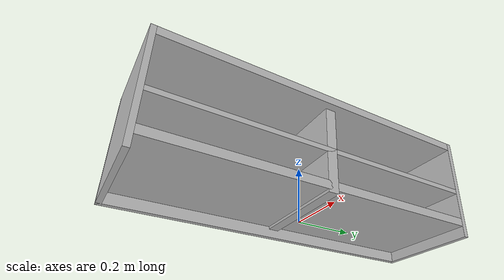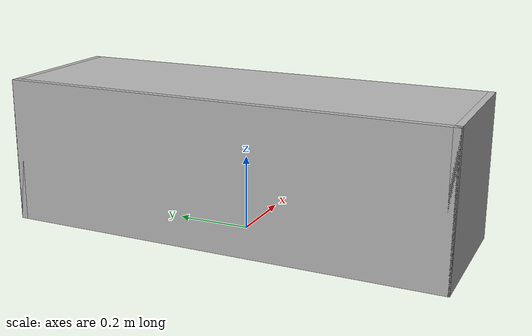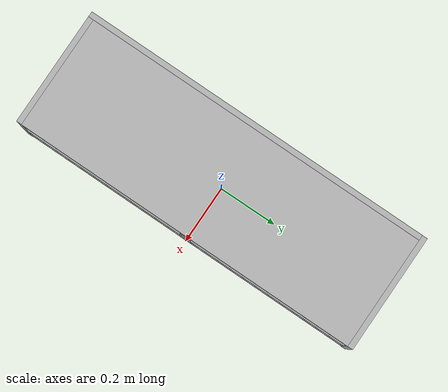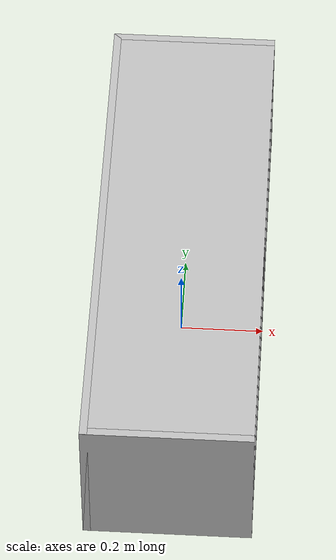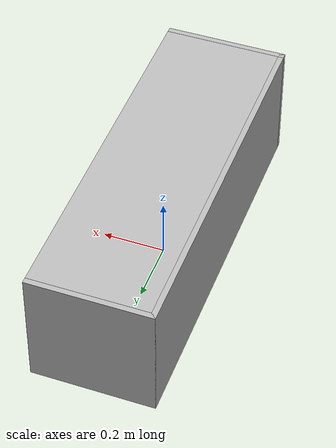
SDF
<?xml version="1.0" ?>
<sdf version="1.6">
  <model name="rpo2023/tv_stand">
    <static>true</static>
    <link name="1_link">
      <collision name="1_col">
        <geometry>
          <box>
            <size>0.395 0.018 0.393</size>
          </box>
        </geometry>
      </collision>
      <visual name="1_vis">
        <geometry>
          <box>
            <size>0.395 0.018 0.393</size>
          </box>
        </geometry>
      </visual>
      <pose>0.0 -0.591 0.1965 0 0 0</pose>
    </link>
    <link name="2_link">
      <collision name="2_col">
        <geometry>
          <box>
            <size>0.395 0.018 0.393</size>
          </box>
        </geometry>
      </collision>
      <visual name="2_vis">
        <geometry>
          <box>
            <size>0.395 0.018 0.393</size>
          </box>
        </geometry>
      </visual>
      <pose>0.0 0.591 0.1965 0 0 0</pose>
    </link>
    <link name="3_link">
      <collision name="3_col">
        <geometry>
          <box>
            <size>0.018 1.2 0.393</size>
          </box>
        </geometry>
      </collision>
      <visual name="3_vis">
        <geometry>
          <box>
            <size>0.018 1.2 0.393</size>
          </box>
        </geometry>
      </visual>
      <pose>-0.1885 0.0 0.1965 0 0 0</pose>
    </link>
    <link name="4_link">
      <collision name="4_col">
        <geometry>
          <box>
            <size>0.377 1.164 0.03</size>
          </box>
        </geometry>
      </collision>
      <visual name="4_vis">
        <geometry>
          <box>
            <size>0.377 1.164 0.03</size>
          </box>
        </geometry>
      </visual>
      <pose>0.009 0.0 0.378 0 0 0</pose>
    </link>
    <link name="5_link">
      <collision name="5_col">
        <geometry>
          <box>
            <size>0.377 1.164 0.03</size>
          </box>
        </geometry>
      </collision>
      <visual name="5_vis">
        <geometry>
          <box>
            <size>0.377 1.164 0.03</size>
          </box>
        </geometry>
      </visual>
      <pose>0.009 0.0 0.055 0 0 0</pose>
    </link>
    <link name="6_link">
      <collision name="6_col">
        <geometry>
          <box>
            <size>0.377 1.164 0.018</size>
          </box>
        </geometry>
      </collision>
      <visual name="6_vis">
        <geometry>
          <box>
            <size>0.377 1.164 0.018</size>
          </box>
        </geometry>
      </visual>
      <pose>0.009 0.0 0.179 0 0 0</pose>
    </link>
    <link name="7_link">
      <collision name="7_col">
        <geometry>
          <box>
            <size>0.377 0.037 0.305</size>
          </box>
        </geometry>
      </collision>
      <visual name="7_vis">
        <geometry>
          <box>
            <size>0.377 0.037 0.305</size>
          </box>
        </geometry>
      </visual>
      <pose>0.009 0.0015 0.1825 0 0 0</pose>
    </link>
    <link name="in_front_of">
      <virtual_volume name="in_front_of_vv">
        <geometry>
          <box>
            <size>0.2 1.0 0.01</size>
          </box>
        </geometry>
        <pose>0.6975 0.0 0.005 0 0 0</pose>
      </virtual_volume>
    </link>
  </model>
</sdf>
